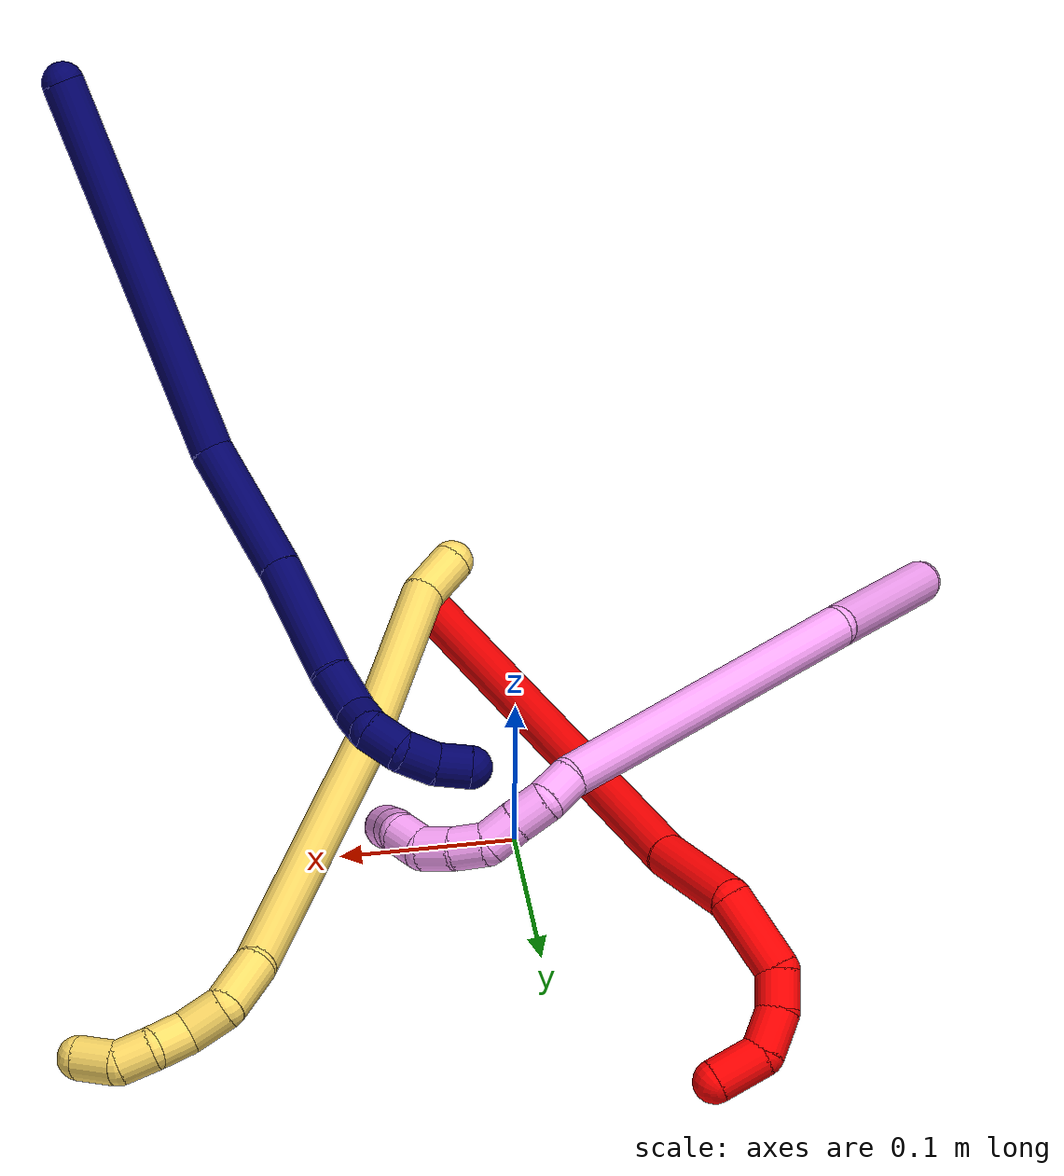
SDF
<sdf version="1.7">
 <world name="default">
  <model name="2">
   <static>0</static>
   <link name="2">
    <collision name="collision-cylinder-e_1_1_4">
     <pose>-0.007252 -0.004615 0.156243 0.029531 -0.046358 -0.000685</pose>
     <geometry><cylinder><radius>0.0125</radius><length>0.312959</length></cylinder></geometry>
     <surface>
      <friction><ode><mu>1.16</mu><mu2>1.16</mu2><slip1>0</slip1><slip2>0</slip2></ode></friction>
      <contact><ode><kp>1e+06</kp><kd>1</kd><max_vel>0</max_vel><min_depth>0.001</min_depth></ode></contact>
     </surface>
    </collision>
    <visual name="visual-cylinder-e_1_1_4">
     <pose>-0.007252 -0.004615 0.156243 0.029531 -0.046358 -0.000685</pose>
     <geometry><cylinder><radius>0.0125</radius><length>0.312959</length></cylinder></geometry>
     <material><ambient>1 0 0 1</ambient></material>
    </visual>
    <collision name="collision-cylinder-e_2_4_5">
     <pose>-0.019355 -0.012585 0.342227 0.112306 -0.160712 -0.009053</pose>
     <geometry><cylinder><radius>0.0125</radius><length>0.060639</length></cylinder></geometry>
     <surface>
      <friction><ode><mu>1.16</mu><mu2>1.16</mu2><slip1>0</slip1><slip2>0</slip2></ode></friction>
      <contact><ode><kp>1e+06</kp><kd>1</kd><max_vel>0</max_vel><min_depth>0.001</min_depth></ode></contact>
     </surface>
    </collision>
    <visual name="visual-cylinder-e_2_4_5">
     <pose>-0.019355 -0.012585 0.342227 0.112306 -0.160712 -0.009053</pose>
     <geometry><cylinder><radius>0.0125</radius><length>0.060639</length></cylinder></geometry>
     <material><ambient>1 0 0 1</ambient></material>
    </visual>
    <collision name="collision-cylinder-e_3_5_6">
     <pose>-0.034127 -0.004891 0.390769 -0.531255 -0.426937 0.117812</pose>
     <geometry><cylinder><radius>0.0125</radius><length>0.047917</length></cylinder></geometry>
     <surface>
      <friction><ode><mu>1.16</mu><mu2>1.16</mu2><slip1>0</slip1><slip2>0</slip2></ode></friction>
      <contact><ode><kp>1e+06</kp><kd>1</kd><max_vel>0</max_vel><min_depth>0.001</min_depth></ode></contact>
     </surface>
    </collision>
    <visual name="visual-cylinder-e_3_5_6">
     <pose>-0.034127 -0.004891 0.390769 -0.531255 -0.426937 0.117812</pose>
     <geometry><cylinder><radius>0.0125</radius><length>0.047917</length></cylinder></geometry>
     <material><ambient>1 0 0 1</ambient></material>
    </visual>
    <collision name="collision-cylinder-e_4_6_7">
     <pose>-0.043724 0.015041 0.416463 -0.910974 0.02881 -0.014113</pose>
     <geometry><cylinder><radius>0.0125</radius><length>0.022497</length></cylinder></geometry>
     <surface>
      <friction><ode><mu>1.16</mu><mu2>1.16</mu2><slip1>0</slip1><slip2>0</slip2></ode></friction>
      <contact><ode><kp>1e+06</kp><kd>1</kd><max_vel>0</max_vel><min_depth>0.001</min_depth></ode></contact>
     </surface>
    </collision>
    <visual name="visual-cylinder-e_4_6_7">
     <pose>-0.043724 0.015041 0.416463 -0.910974 0.02881 -0.014113</pose>
     <geometry><cylinder><radius>0.0125</radius><length>0.022497</length></cylinder></geometry>
     <material><ambient>1 0 0 1</ambient></material>
    </visual>
    <collision name="collision-cylinder-e_5_7_8">
     <pose>-0.038681 0.03413 0.429854 -1.00374 0.371907 -0.205734</pose>
     <geometry><cylinder><radius>0.0125</radius><length>0.025972</length></cylinder></geometry>
     <surface>
      <friction><ode><mu>1.16</mu><mu2>1.16</mu2><slip1>0</slip1><slip2>0</slip2></ode></friction>
      <contact><ode><kp>1e+06</kp><kd>1</kd><max_vel>0</max_vel><min_depth>0.001</min_depth></ode></contact>
     </surface>
    </collision>
    <visual name="visual-cylinder-e_5_7_8">
     <pose>-0.038681 0.03413 0.429854 -1.00374 0.371907 -0.205734</pose>
     <geometry><cylinder><radius>0.0125</radius><length>0.025972</length></cylinder></geometry>
     <material><ambient>1 0 0 1</ambient></material>
    </visual>
    <collision name="collision-cylinder-e_6_8_2">
     <pose>-0.021917 0.053284 0.436635 -1.53929 0.931532 -0.906481</pose>
     <geometry><cylinder><radius>0.0125</radius><length>0.030016</length></cylinder></geometry>
     <surface>
      <friction><ode><mu>1.16</mu><mu2>1.16</mu2><slip1>0</slip1><slip2>0</slip2></ode></friction>
      <contact><ode><kp>1e+06</kp><kd>1</kd><max_vel>0</max_vel><min_depth>0.001</min_depth></ode></contact>
     </surface>
    </collision>
    <visual name="visual-cylinder-e_6_8_2">
     <pose>-0.021917 0.053284 0.436635 -1.53929 0.931532 -0.906481</pose>
     <geometry><cylinder><radius>0.0125</radius><length>0.030016</length></cylinder></geometry>
     <material><ambient>1 0 0 1</ambient></material>
    </visual>
    <collision name="collision-sphere-2">
     <pose>-0.009873 0.062233 0.436917 0 -0 0</pose>
     <geometry><sphere><radius>0.0125</radius></sphere></geometry>
     <surface>
      <friction><ode><mu>1.16</mu><mu2>1.16</mu2><slip1>0</slip1><slip2>0</slip2></ode></friction>
      <contact><ode><kp>1e+06</kp><kd>1</kd><max_vel>0</max_vel><min_depth>0.001</min_depth></ode></contact>
     </surface>
    </collision>
    <visual name="visual-sphere-2">
     <pose>-0.009873 0.062233 0.436917 0 -0 0</pose>
     <geometry><sphere><radius>0.0125</radius></sphere></geometry>
     <material><ambient>1 0 0 1</ambient></material>
    </visual>
    <collision name="collision-sphere-4">
     <pose>-0.014503 -0.009231 0.312487 0 -0 0</pose>
     <geometry><sphere><radius>0.0125</radius></sphere></geometry>
     <surface>
      <friction><ode><mu>1.16</mu><mu2>1.16</mu2><slip1>0</slip1><slip2>0</slip2></ode></friction>
      <contact><ode><kp>1e+06</kp><kd>1</kd><max_vel>0</max_vel><min_depth>0.001</min_depth></ode></contact>
     </surface>
    </collision>
    <visual name="visual-sphere-4">
     <pose>-0.014503 -0.009231 0.312487 0 -0 0</pose>
     <geometry><sphere><radius>0.0125</radius></sphere></geometry>
     <material><ambient>1 0 0 1</ambient></material>
    </visual>
    <collision name="collision-sphere-1">
     <geometry><sphere><radius>0.0125</radius></sphere></geometry>
     <surface>
      <friction><ode><mu>1.16</mu><mu2>1.16</mu2><slip1>0</slip1><slip2>0</slip2></ode></friction>
      <contact><ode><kp>1e+06</kp><kd>1</kd><max_vel>0</max_vel><min_depth>0.001</min_depth></ode></contact>
     </surface>
    </collision>
    <visual name="visual-sphere-1">
     <geometry><sphere><radius>0.0125</radius></sphere></geometry>
     <material><ambient>1 0 0 1</ambient></material>
    </visual>
    <collision name="collision-sphere-8">
     <pose>-0.033962 0.044334 0.436353 0 -0 0</pose>
     <geometry><sphere><radius>0.0125</radius></sphere></geometry>
     <surface>
      <friction><ode><mu>1.16</mu><mu2>1.16</mu2><slip1>0</slip1><slip2>0</slip2></ode></friction>
      <contact><ode><kp>1e+06</kp><kd>1</kd><max_vel>0</max_vel><min_depth>0.001</min_depth></ode></contact>
     </surface>
    </collision>
    <visual name="visual-sphere-8">
     <pose>-0.033962 0.044334 0.436353 0 -0 0</pose>
     <geometry><sphere><radius>0.0125</radius></sphere></geometry>
     <material><ambient>1 0 0 1</ambient></material>
    </visual>
    <collision name="collision-sphere-5">
     <pose>-0.024207 -0.015939 0.371967 0 -0 0</pose>
     <geometry><sphere><radius>0.0125</radius></sphere></geometry>
     <surface>
      <friction><ode><mu>1.16</mu><mu2>1.16</mu2><slip1>0</slip1><slip2>0</slip2></ode></friction>
      <contact><ode><kp>1e+06</kp><kd>1</kd><max_vel>0</max_vel><min_depth>0.001</min_depth></ode></contact>
     </surface>
    </collision>
    <visual name="visual-sphere-5">
     <pose>-0.024207 -0.015939 0.371967 0 -0 0</pose>
     <geometry><sphere><radius>0.0125</radius></sphere></geometry>
     <material><ambient>1 0 0 1</ambient></material>
    </visual>
    <collision name="collision-sphere-6">
     <pose>-0.044048 0.006157 0.409571 0 -0 0</pose>
     <geometry><sphere><radius>0.0125</radius></sphere></geometry>
     <surface>
      <friction><ode><mu>1.16</mu><mu2>1.16</mu2><slip1>0</slip1><slip2>0</slip2></ode></friction>
      <contact><ode><kp>1e+06</kp><kd>1</kd><max_vel>0</max_vel><min_depth>0.001</min_depth></ode></contact>
     </surface>
    </collision>
    <visual name="visual-sphere-6">
     <pose>-0.044048 0.006157 0.409571 0 -0 0</pose>
     <geometry><sphere><radius>0.0125</radius></sphere></geometry>
     <material><ambient>1 0 0 1</ambient></material>
    </visual>
    <collision name="collision-sphere-7">
     <pose>-0.0434 0.023925 0.423356 0 -0 0</pose>
     <geometry><sphere><radius>0.0125</radius></sphere></geometry>
     <surface>
      <friction><ode><mu>1.16</mu><mu2>1.16</mu2><slip1>0</slip1><slip2>0</slip2></ode></friction>
      <contact><ode><kp>1e+06</kp><kd>1</kd><max_vel>0</max_vel><min_depth>0.001</min_depth></ode></contact>
     </surface>
    </collision>
    <visual name="visual-sphere-7">
     <pose>-0.0434 0.023925 0.423356 0 -0 0</pose>
     <geometry><sphere><radius>0.0125</radius></sphere></geometry>
     <material><ambient>1 0 0 1</ambient></material>
    </visual>
    <inertial>
     <pose>-0.015449 0.000765 0.244028 0 -0 0</pose>
     <mass>0.5</mass>
     <inertia>
      <ixx>0.002596</ixx>
      <ixy>0</ixy>
      <ixz>0</ixz>
      <iyy>0.002603</iyy>
      <iyz>0</iyz>
      <izz>0.000225</izz>
     </inertia>
    </inertial>
   </link>
   <pose>0.022462 -0.199701 0.011494 -1.40688 -0.360816 0.196092</pose>
  </model>
  <model name="4">
   <static>0</static>
   <link name="4">
    <collision name="collision-cylinder-e_1_1_4">
     <pose>0.009525 0.020167 -0.061052 -2.82256 0.147066 -0.85877</pose>
     <geometry><cylinder><radius>0.0125</radius><length>0.129997</length></cylinder></geometry>
     <surface>
      <friction><ode><mu>1.16</mu><mu2>1.16</mu2><slip1>0</slip1><slip2>0</slip2></ode></friction>
      <contact><ode><kp>1e+06</kp><kd>1</kd><max_vel>0</max_vel><min_depth>0.001</min_depth></ode></contact>
     </surface>
    </collision>
    <visual name="visual-cylinder-e_1_1_4">
     <pose>0.009525 0.020167 -0.061052 -2.82256 0.147066 -0.85877</pose>
     <geometry><cylinder><radius>0.0125</radius><length>0.129997</length></cylinder></geometry>
     <material><ambient>1 0.65098 0.996078 1</ambient></material>
    </visual>
    <collision name="collision-cylinder-e_2_4_5">
     <pose>0.043114 0.019352 -0.221646 2.93385 0.232285 1.68312</pose>
     <geometry><cylinder><radius>0.0125</radius><length>0.209072</length></cylinder></geometry>
     <surface>
      <friction><ode><mu>1.16</mu><mu2>1.16</mu2><slip1>0</slip1><slip2>0</slip2></ode></friction>
      <contact><ode><kp>1e+06</kp><kd>1</kd><max_vel>0</max_vel><min_depth>0.001</min_depth></ode></contact>
     </surface>
    </collision>
    <visual name="visual-cylinder-e_2_4_5">
     <pose>0.043114 0.019352 -0.221646 2.93385 0.232285 1.68312</pose>
     <geometry><cylinder><radius>0.0125</radius><length>0.209072</length></cylinder></geometry>
     <material><ambient>1 0.65098 0.996078 1</ambient></material>
    </visual>
    <collision name="collision-cylinder-e_3_5_6">
     <pose>0.067289 -0.005288 -0.330681 2.77383 0.010939 0.058798</pose>
     <geometry><cylinder><radius>0.0125</radius><length>0.02035</length></cylinder></geometry>
     <surface>
      <friction><ode><mu>1.16</mu><mu2>1.16</mu2><slip1>0</slip1><slip2>0</slip2></ode></friction>
      <contact><ode><kp>1e+06</kp><kd>1</kd><max_vel>0</max_vel><min_depth>0.001</min_depth></ode></contact>
     </surface>
    </collision>
    <visual name="visual-cylinder-e_3_5_6">
     <pose>0.067289 -0.005288 -0.330681 2.77383 0.010939 0.058798</pose>
     <geometry><cylinder><radius>0.0125</radius><length>0.02035</length></cylinder></geometry>
     <material><ambient>1 0.65098 0.996078 1</ambient></material>
    </visual>
    <collision name="collision-cylinder-e_4_6_7">
     <pose>0.069005 -0.016779 -0.346638 2.26064 0.156714 0.330121</pose>
     <geometry><cylinder><radius>0.0125</radius><length>0.020561</length></cylinder></geometry>
     <surface>
      <friction><ode><mu>1.16</mu><mu2>1.16</mu2><slip1>0</slip1><slip2>0</slip2></ode></friction>
      <contact><ode><kp>1e+06</kp><kd>1</kd><max_vel>0</max_vel><min_depth>0.001</min_depth></ode></contact>
     </surface>
    </collision>
    <visual name="visual-cylinder-e_4_6_7">
     <pose>0.069005 -0.016779 -0.346638 2.26064 0.156714 0.330121</pose>
     <geometry><cylinder><radius>0.0125</radius><length>0.020561</length></cylinder></geometry>
     <material><ambient>1 0.65098 0.996078 1</ambient></material>
    </visual>
    <collision name="collision-cylinder-e_5_7_8">
     <pose>0.071651 -0.03213 -0.359625 2.28556 0.10425 0.227724</pose>
     <geometry><cylinder><radius>0.0125</radius><length>0.02002</length></cylinder></geometry>
     <surface>
      <friction><ode><mu>1.16</mu><mu2>1.16</mu2><slip1>0</slip1><slip2>0</slip2></ode></friction>
      <contact><ode><kp>1e+06</kp><kd>1</kd><max_vel>0</max_vel><min_depth>0.001</min_depth></ode></contact>
     </surface>
    </collision>
    <visual name="visual-cylinder-e_5_7_8">
     <pose>0.071651 -0.03213 -0.359625 2.28556 0.10425 0.227724</pose>
     <geometry><cylinder><radius>0.0125</radius><length>0.02002</length></cylinder></geometry>
     <material><ambient>1 0.65098 0.996078 1</ambient></material>
    </visual>
    <collision name="collision-cylinder-e_6_8_9">
     <pose>0.078229 -0.047421 -0.369143 1.93835 0.586639 0.828921</pose>
     <geometry><cylinder><radius>0.0125</radius><length>0.02</length></cylinder></geometry>
     <surface>
      <friction><ode><mu>1.16</mu><mu2>1.16</mu2><slip1>0</slip1><slip2>0</slip2></ode></friction>
      <contact><ode><kp>1e+06</kp><kd>1</kd><max_vel>0</max_vel><min_depth>0.001</min_depth></ode></contact>
     </surface>
    </collision>
    <visual name="visual-cylinder-e_6_8_9">
     <pose>0.078229 -0.047421 -0.369143 1.93835 0.586639 0.828921</pose>
     <geometry><cylinder><radius>0.0125</radius><length>0.02</length></cylinder></geometry>
     <material><ambient>1 0.65098 0.996078 1</ambient></material>
    </visual>
    <collision name="collision-cylinder-e_7_9_10">
     <pose>0.089919 -0.062953 -0.373513 1.74643 0.662939 0.779262</pose>
     <geometry><cylinder><radius>0.0125</radius><length>0.02</length></cylinder></geometry>
     <surface>
      <friction><ode><mu>1.16</mu><mu2>1.16</mu2><slip1>0</slip1><slip2>0</slip2></ode></friction>
      <contact><ode><kp>1e+06</kp><kd>1</kd><max_vel>0</max_vel><min_depth>0.001</min_depth></ode></contact>
     </surface>
    </collision>
    <visual name="visual-cylinder-e_7_9_10">
     <pose>0.089919 -0.062953 -0.373513 1.74643 0.662939 0.779262</pose>
     <geometry><cylinder><radius>0.0125</radius><length>0.02</length></cylinder></geometry>
     <material><ambient>1 0.65098 0.996078 1</ambient></material>
    </visual>
    <collision name="collision-cylinder-e_8_10_11">
     <pose>0.103141 -0.076712 -0.371138 1.01184 0.784898 0.450839</pose>
     <geometry><cylinder><radius>0.0125</radius><length>0.02</length></cylinder></geometry>
     <surface>
      <friction><ode><mu>1.16</mu><mu2>1.16</mu2><slip1>0</slip1><slip2>0</slip2></ode></friction>
      <contact><ode><kp>1e+06</kp><kd>1</kd><max_vel>0</max_vel><min_depth>0.001</min_depth></ode></contact>
     </surface>
    </collision>
    <visual name="visual-cylinder-e_8_10_11">
     <pose>0.103141 -0.076712 -0.371138 1.01184 0.784898 0.450839</pose>
     <geometry><cylinder><radius>0.0125</radius><length>0.02</length></cylinder></geometry>
     <material><ambient>1 0.65098 0.996078 1</ambient></material>
    </visual>
    <collision name="collision-cylinder-e_9_11_12">
     <pose>0.112099 -0.089999 -0.360807 0.83656 0.190206 0.084754</pose>
     <geometry><cylinder><radius>0.0125</radius><length>0.02</length></cylinder></geometry>
     <surface>
      <friction><ode><mu>1.16</mu><mu2>1.16</mu2><slip1>0</slip1><slip2>0</slip2></ode></friction>
      <contact><ode><kp>1e+06</kp><kd>1</kd><max_vel>0</max_vel><min_depth>0.001</min_depth></ode></contact>
     </surface>
    </collision>
    <visual name="visual-cylinder-e_9_11_12">
     <pose>0.112099 -0.089999 -0.360807 0.83656 0.190206 0.084754</pose>
     <geometry><cylinder><radius>0.0125</radius><length>0.02</length></cylinder></geometry>
     <material><ambient>1 0.65098 0.996078 1</ambient></material>
    </visual>
    <collision name="collision-cylinder-e_10_12_2">
     <pose>0.116202 -0.105046 -0.348317 0.919658 0.223147 0.110858</pose>
     <geometry><cylinder><radius>0.0125</radius><length>0.02</length></cylinder></geometry>
     <surface>
      <friction><ode><mu>1.16</mu><mu2>1.16</mu2><slip1>0</slip1><slip2>0</slip2></ode></friction>
      <contact><ode><kp>1e+06</kp><kd>1</kd><max_vel>0</max_vel><min_depth>0.001</min_depth></ode></contact>
     </surface>
    </collision>
    <visual name="visual-cylinder-e_10_12_2">
     <pose>0.116202 -0.105046 -0.348317 0.919658 0.223147 0.110858</pose>
     <geometry><cylinder><radius>0.0125</radius><length>0.02</length></cylinder></geometry>
     <material><ambient>1 0.65098 0.996078 1</ambient></material>
    </visual>
    <collision name="collision-sphere-2">
     <pose>0.118415 -0.112802 -0.342407 0 -0 0</pose>
     <geometry><sphere><radius>0.0125</radius></sphere></geometry>
     <surface>
      <friction><ode><mu>1.16</mu><mu2>1.16</mu2><slip1>0</slip1><slip2>0</slip2></ode></friction>
      <contact><ode><kp>1e+06</kp><kd>1</kd><max_vel>0</max_vel><min_depth>0.001</min_depth></ode></contact>
     </surface>
    </collision>
    <visual name="visual-sphere-2">
     <pose>0.118415 -0.112802 -0.342407 0 -0 0</pose>
     <geometry><sphere><radius>0.0125</radius></sphere></geometry>
     <material><ambient>1 0.65098 0.996078 1</ambient></material>
    </visual>
    <collision name="collision-sphere-12">
     <pose>0.113989 -0.097289 -0.354228 0 -0 0</pose>
     <geometry><sphere><radius>0.0125</radius></sphere></geometry>
     <surface>
      <friction><ode><mu>1.16</mu><mu2>1.16</mu2><slip1>0</slip1><slip2>0</slip2></ode></friction>
      <contact><ode><kp>1e+06</kp><kd>1</kd><max_vel>0</max_vel><min_depth>0.001</min_depth></ode></contact>
     </surface>
    </collision>
    <visual name="visual-sphere-12">
     <pose>0.113989 -0.097289 -0.354228 0 -0 0</pose>
     <geometry><sphere><radius>0.0125</radius></sphere></geometry>
     <material><ambient>1 0.65098 0.996078 1</ambient></material>
    </visual>
    <collision name="collision-sphere-11">
     <pose>0.110208 -0.08271 -0.367387 0 -0 0</pose>
     <geometry><sphere><radius>0.0125</radius></sphere></geometry>
     <surface>
      <friction><ode><mu>1.16</mu><mu2>1.16</mu2><slip1>0</slip1><slip2>0</slip2></ode></friction>
      <contact><ode><kp>1e+06</kp><kd>1</kd><max_vel>0</max_vel><min_depth>0.001</min_depth></ode></contact>
     </surface>
    </collision>
    <visual name="visual-sphere-11">
     <pose>0.110208 -0.08271 -0.367387 0 -0 0</pose>
     <geometry><sphere><radius>0.0125</radius></sphere></geometry>
     <material><ambient>1 0.65098 0.996078 1</ambient></material>
    </visual>
    <collision name="collision-sphere-10">
     <pose>0.096073 -0.070714 -0.37489 0 -0 0</pose>
     <geometry><sphere><radius>0.0125</radius></sphere></geometry>
     <surface>
      <friction><ode><mu>1.16</mu><mu2>1.16</mu2><slip1>0</slip1><slip2>0</slip2></ode></friction>
      <contact><ode><kp>1e+06</kp><kd>1</kd><max_vel>0</max_vel><min_depth>0.001</min_depth></ode></contact>
     </surface>
    </collision>
    <visual name="visual-sphere-10">
     <pose>0.096073 -0.070714 -0.37489 0 -0 0</pose>
     <geometry><sphere><radius>0.0125</radius></sphere></geometry>
     <material><ambient>1 0.65098 0.996078 1</ambient></material>
    </visual>
    <collision name="collision-sphere-9">
     <pose>0.083764 -0.055193 -0.372136 0 -0 0</pose>
     <geometry><sphere><radius>0.0125</radius></sphere></geometry>
     <surface>
      <friction><ode><mu>1.16</mu><mu2>1.16</mu2><slip1>0</slip1><slip2>0</slip2></ode></friction>
      <contact><ode><kp>1e+06</kp><kd>1</kd><max_vel>0</max_vel><min_depth>0.001</min_depth></ode></contact>
     </surface>
    </collision>
    <visual name="visual-sphere-9">
     <pose>0.083764 -0.055193 -0.372136 0 -0 0</pose>
     <geometry><sphere><radius>0.0125</radius></sphere></geometry>
     <material><ambient>1 0.65098 0.996078 1</ambient></material>
    </visual>
    <collision name="collision-sphere-4">
     <pose>0.019049 0.040334 -0.122105 0 -0 0</pose>
     <geometry><sphere><radius>0.0125</radius></sphere></geometry>
     <surface>
      <friction><ode><mu>1.16</mu><mu2>1.16</mu2><slip1>0</slip1><slip2>0</slip2></ode></friction>
      <contact><ode><kp>1e+06</kp><kd>1</kd><max_vel>0</max_vel><min_depth>0.001</min_depth></ode></contact>
     </surface>
    </collision>
    <visual name="visual-sphere-4">
     <pose>0.019049 0.040334 -0.122105 0 -0 0</pose>
     <geometry><sphere><radius>0.0125</radius></sphere></geometry>
     <material><ambient>1 0.65098 0.996078 1</ambient></material>
    </visual>
    <collision name="collision-sphere-1">
     <geometry><sphere><radius>0.0125</radius></sphere></geometry>
     <surface>
      <friction><ode><mu>1.16</mu><mu2>1.16</mu2><slip1>0</slip1><slip2>0</slip2></ode></friction>
      <contact><ode><kp>1e+06</kp><kd>1</kd><max_vel>0</max_vel><min_depth>0.001</min_depth></ode></contact>
     </surface>
    </collision>
    <visual name="visual-sphere-1">
     <geometry><sphere><radius>0.0125</radius></sphere></geometry>
     <material><ambient>1 0.65098 0.996078 1</ambient></material>
    </visual>
    <collision name="collision-sphere-8">
     <pose>0.072693 -0.039649 -0.366151 0 -0 0</pose>
     <geometry><sphere><radius>0.0125</radius></sphere></geometry>
     <surface>
      <friction><ode><mu>1.16</mu><mu2>1.16</mu2><slip1>0</slip1><slip2>0</slip2></ode></friction>
      <contact><ode><kp>1e+06</kp><kd>1</kd><max_vel>0</max_vel><min_depth>0.001</min_depth></ode></contact>
     </surface>
    </collision>
    <visual name="visual-sphere-8">
     <pose>0.072693 -0.039649 -0.366151 0 -0 0</pose>
     <geometry><sphere><radius>0.0125</radius></sphere></geometry>
     <material><ambient>1 0.65098 0.996078 1</ambient></material>
    </visual>
    <collision name="collision-sphere-5">
     <pose>0.067178 -0.00163 -0.321187 0 -0 0</pose>
     <geometry><sphere><radius>0.0125</radius></sphere></geometry>
     <surface>
      <friction><ode><mu>1.16</mu><mu2>1.16</mu2><slip1>0</slip1><slip2>0</slip2></ode></friction>
      <contact><ode><kp>1e+06</kp><kd>1</kd><max_vel>0</max_vel><min_depth>0.001</min_depth></ode></contact>
     </surface>
    </collision>
    <visual name="visual-sphere-5">
     <pose>0.067178 -0.00163 -0.321187 0 -0 0</pose>
     <geometry><sphere><radius>0.0125</radius></sphere></geometry>
     <material><ambient>1 0.65098 0.996078 1</ambient></material>
    </visual>
    <collision name="collision-sphere-6">
     <pose>0.067401 -0.008946 -0.340175 0 -0 0</pose>
     <geometry><sphere><radius>0.0125</radius></sphere></geometry>
     <surface>
      <friction><ode><mu>1.16</mu><mu2>1.16</mu2><slip1>0</slip1><slip2>0</slip2></ode></friction>
      <contact><ode><kp>1e+06</kp><kd>1</kd><max_vel>0</max_vel><min_depth>0.001</min_depth></ode></contact>
     </surface>
    </collision>
    <visual name="visual-sphere-6">
     <pose>0.067401 -0.008946 -0.340175 0 -0 0</pose>
     <geometry><sphere><radius>0.0125</radius></sphere></geometry>
     <material><ambient>1 0.65098 0.996078 1</ambient></material>
    </visual>
    <collision name="collision-sphere-7">
     <pose>0.07061 -0.024611 -0.3531 0 -0 0</pose>
     <geometry><sphere><radius>0.0125</radius></sphere></geometry>
     <surface>
      <friction><ode><mu>1.16</mu><mu2>1.16</mu2><slip1>0</slip1><slip2>0</slip2></ode></friction>
      <contact><ode><kp>1e+06</kp><kd>1</kd><max_vel>0</max_vel><min_depth>0.001</min_depth></ode></contact>
     </surface>
    </collision>
    <visual name="visual-sphere-7">
     <pose>0.07061 -0.024611 -0.3531 0 -0 0</pose>
     <geometry><sphere><radius>0.0125</radius></sphere></geometry>
     <material><ambient>1 0.65098 0.996078 1</ambient></material>
    </visual>
    <inertial>
     <pose>0.048933 -0.004142 -0.223582 0 -0 0</pose>
     <mass>0.5</mass>
     <inertia>
      <ixx>0.000663</ixx>
      <ixy>0</ixy>
      <ixz>0</ixz>
      <iyy>0.000609</iyy>
      <iyz>0</iyz>
      <izz>-0.000131</izz>
     </inertia>
    </inertial>
   </link>
   <pose>-0.266964 -0.176886 0.011912 1.67491 -0.580191 -0.727052</pose>
  </model>
  <model name="5">
   <static>0</static>
   <link name="5">
    <collision name="collision-cylinder-e_1_1_4">
     <pose>0.000305 0.014765 0.00164 -1.4602 0.020551 -0.018395</pose>
     <geometry><cylinder><radius>0.0125</radius><length>0.029718</length></cylinder></geometry>
     <surface>
      <friction><ode><mu>1.16</mu><mu2>1.16</mu2><slip1>0</slip1><slip2>0</slip2></ode></friction>
      <contact><ode><kp>1e+06</kp><kd>1</kd><max_vel>0</max_vel><min_depth>0.001</min_depth></ode></contact>
     </surface>
    </collision>
    <visual name="visual-cylinder-e_1_1_4">
     <pose>0.000305 0.014765 0.00164 -1.4602 0.020551 -0.018395</pose>
     <geometry><cylinder><radius>0.0125</radius><length>0.029718</length></cylinder></geometry>
     <material><ambient>1 0.858824 0.4 1</ambient></material>
    </visual>
    <collision name="collision-cylinder-e_2_4_5">
     <pose>0.027735 0.089232 0.004977 -1.54237 0.426296 -0.414692</pose>
     <geometry><cylinder><radius>0.0125</radius><length>0.131193</length></cylinder></geometry>
     <surface>
      <friction><ode><mu>1.16</mu><mu2>1.16</mu2><slip1>0</slip1><slip2>0</slip2></ode></friction>
      <contact><ode><kp>1e+06</kp><kd>1</kd><max_vel>0</max_vel><min_depth>0.001</min_depth></ode></contact>
     </surface>
    </collision>
    <visual name="visual-cylinder-e_2_4_5">
     <pose>0.027735 0.089232 0.004977 -1.54237 0.426296 -0.414692</pose>
     <geometry><cylinder><radius>0.0125</radius><length>0.131193</length></cylinder></geometry>
     <material><ambient>1 0.858824 0.4 1</ambient></material>
    </visual>
    <collision name="collision-cylinder-e_3_5_6">
     <pose>0.097737 0.245897 -0.003712 -1.67751 0.414246 -0.459442</pose>
     <geometry><cylinder><radius>0.0125</radius><length>0.213057</length></cylinder></geometry>
     <surface>
      <friction><ode><mu>1.16</mu><mu2>1.16</mu2><slip1>0</slip1><slip2>0</slip2></ode></friction>
      <contact><ode><kp>1e+06</kp><kd>1</kd><max_vel>0</max_vel><min_depth>0.001</min_depth></ode></contact>
     </surface>
    </collision>
    <visual name="visual-cylinder-e_3_5_6">
     <pose>0.097737 0.245897 -0.003712 -1.67751 0.414246 -0.459442</pose>
     <geometry><cylinder><radius>0.0125</radius><length>0.213057</length></cylinder></geometry>
     <material><ambient>1 0.858824 0.4 1</ambient></material>
    </visual>
    <collision name="collision-cylinder-e_4_6_7">
     <pose>0.1436 0.359808 -0.013266 -1.52165 0.174167 -0.16585</pose>
     <geometry><cylinder><radius>0.0125</radius><length>0.034458</length></cylinder></geometry>
     <surface>
      <friction><ode><mu>1.16</mu><mu2>1.16</mu2><slip1>0</slip1><slip2>0</slip2></ode></friction>
      <contact><ode><kp>1e+06</kp><kd>1</kd><max_vel>0</max_vel><min_depth>0.001</min_depth></ode></contact>
     </surface>
    </collision>
    <visual name="visual-cylinder-e_4_6_7">
     <pose>0.1436 0.359808 -0.013266 -1.52165 0.174167 -0.16585</pose>
     <geometry><cylinder><radius>0.0125</radius><length>0.034458</length></cylinder></geometry>
     <material><ambient>1 0.858824 0.4 1</ambient></material>
    </visual>
    <collision name="collision-cylinder-e_5_7_8">
     <pose>0.140218 0.38679 -0.008544 -1.20114 -0.534274 0.370623</pose>
     <geometry><cylinder><radius>0.0125</radius><length>0.025007</length></cylinder></geometry>
     <surface>
      <friction><ode><mu>1.16</mu><mu2>1.16</mu2><slip1>0</slip1><slip2>0</slip2></ode></friction>
      <contact><ode><kp>1e+06</kp><kd>1</kd><max_vel>0</max_vel><min_depth>0.001</min_depth></ode></contact>
     </surface>
    </collision>
    <visual name="visual-cylinder-e_5_7_8">
     <pose>0.140218 0.38679 -0.008544 -1.20114 -0.534274 0.370623</pose>
     <geometry><cylinder><radius>0.0125</radius><length>0.025007</length></cylinder></geometry>
     <material><ambient>1 0.858824 0.4 1</ambient></material>
    </visual>
    <collision name="collision-cylinder-e_6_8_9">
     <pose>0.130747 0.407078 -0.005741 -1.67615 -0.292411 0.324423</pose>
     <geometry><cylinder><radius>0.0125</radius><length>0.021537</length></cylinder></geometry>
     <surface>
      <friction><ode><mu>1.16</mu><mu2>1.16</mu2><slip1>0</slip1><slip2>0</slip2></ode></friction>
      <contact><ode><kp>1e+06</kp><kd>1</kd><max_vel>0</max_vel><min_depth>0.001</min_depth></ode></contact>
     </surface>
    </collision>
    <visual name="visual-cylinder-e_6_8_9">
     <pose>0.130747 0.407078 -0.005741 -1.67615 -0.292411 0.324423</pose>
     <geometry><cylinder><radius>0.0125</radius><length>0.021537</length></cylinder></geometry>
     <material><ambient>1 0.858824 0.4 1</ambient></material>
    </visual>
    <collision name="collision-cylinder-e_7_9_10">
     <pose>0.121261 0.42532 -0.005122 -1.36077 -0.663358 0.543651</pose>
     <geometry><cylinder><radius>0.0125</radius><length>0.02073</length></cylinder></geometry>
     <surface>
      <friction><ode><mu>1.16</mu><mu2>1.16</mu2><slip1>0</slip1><slip2>0</slip2></ode></friction>
      <contact><ode><kp>1e+06</kp><kd>1</kd><max_vel>0</max_vel><min_depth>0.001</min_depth></ode></contact>
     </surface>
    </collision>
    <visual name="visual-cylinder-e_7_9_10">
     <pose>0.121261 0.42532 -0.005122 -1.36077 -0.663358 0.543651</pose>
     <geometry><cylinder><radius>0.0125</radius><length>0.02073</length></cylinder></geometry>
     <material><ambient>1 0.858824 0.4 1</ambient></material>
    </visual>
    <collision name="collision-cylinder-e_8_10_2">
     <pose>0.103135 0.436391 -0.002948 -1.419 -1.31115 1.16722</pose>
     <geometry><cylinder><radius>0.0125</radius><length>0.024301</length></cylinder></geometry>
     <surface>
      <friction><ode><mu>1.16</mu><mu2>1.16</mu2><slip1>0</slip1><slip2>0</slip2></ode></friction>
      <contact><ode><kp>1e+06</kp><kd>1</kd><max_vel>0</max_vel><min_depth>0.001</min_depth></ode></contact>
     </surface>
    </collision>
    <visual name="visual-cylinder-e_8_10_2">
     <pose>0.103135 0.436391 -0.002948 -1.419 -1.31115 1.16722</pose>
     <geometry><cylinder><radius>0.0125</radius><length>0.024301</length></cylinder></geometry>
     <material><ambient>1 0.858824 0.4 1</ambient></material>
    </visual>
    <collision name="collision-sphere-2">
     <pose>0.091392 0.439475 -0.002476 0 -0 0</pose>
     <geometry><sphere><radius>0.0125</radius></sphere></geometry>
     <surface>
      <friction><ode><mu>1.16</mu><mu2>1.16</mu2><slip1>0</slip1><slip2>0</slip2></ode></friction>
      <contact><ode><kp>1e+06</kp><kd>1</kd><max_vel>0</max_vel><min_depth>0.001</min_depth></ode></contact>
     </surface>
    </collision>
    <visual name="visual-sphere-2">
     <pose>0.091392 0.439475 -0.002476 0 -0 0</pose>
     <geometry><sphere><radius>0.0125</radius></sphere></geometry>
     <material><ambient>1 0.858824 0.4 1</ambient></material>
    </visual>
    <collision name="collision-sphere-10">
     <pose>0.114878 0.433307 -0.00342 0 -0 0</pose>
     <geometry><sphere><radius>0.0125</radius></sphere></geometry>
     <surface>
      <friction><ode><mu>1.16</mu><mu2>1.16</mu2><slip1>0</slip1><slip2>0</slip2></ode></friction>
      <contact><ode><kp>1e+06</kp><kd>1</kd><max_vel>0</max_vel><min_depth>0.001</min_depth></ode></contact>
     </surface>
    </collision>
    <visual name="visual-sphere-10">
     <pose>0.114878 0.433307 -0.00342 0 -0 0</pose>
     <geometry><sphere><radius>0.0125</radius></sphere></geometry>
     <material><ambient>1 0.858824 0.4 1</ambient></material>
    </visual>
    <collision name="collision-sphere-9">
     <pose>0.127643 0.417332 -0.006825 0 -0 0</pose>
     <geometry><sphere><radius>0.0125</radius></sphere></geometry>
     <surface>
      <friction><ode><mu>1.16</mu><mu2>1.16</mu2><slip1>0</slip1><slip2>0</slip2></ode></friction>
      <contact><ode><kp>1e+06</kp><kd>1</kd><max_vel>0</max_vel><min_depth>0.001</min_depth></ode></contact>
     </surface>
    </collision>
    <visual name="visual-sphere-9">
     <pose>0.127643 0.417332 -0.006825 0 -0 0</pose>
     <geometry><sphere><radius>0.0125</radius></sphere></geometry>
     <material><ambient>1 0.858824 0.4 1</ambient></material>
    </visual>
    <collision name="collision-sphere-4">
     <pose>0.000611 0.02953 0.003279 0 -0 0</pose>
     <geometry><sphere><radius>0.0125</radius></sphere></geometry>
     <surface>
      <friction><ode><mu>1.16</mu><mu2>1.16</mu2><slip1>0</slip1><slip2>0</slip2></ode></friction>
      <contact><ode><kp>1e+06</kp><kd>1</kd><max_vel>0</max_vel><min_depth>0.001</min_depth></ode></contact>
     </surface>
    </collision>
    <visual name="visual-sphere-4">
     <pose>0.000611 0.02953 0.003279 0 -0 0</pose>
     <geometry><sphere><radius>0.0125</radius></sphere></geometry>
     <material><ambient>1 0.858824 0.4 1</ambient></material>
    </visual>
    <collision name="collision-sphere-1">
     <geometry><sphere><radius>0.0125</radius></sphere></geometry>
     <surface>
      <friction><ode><mu>1.16</mu><mu2>1.16</mu2><slip1>0</slip1><slip2>0</slip2></ode></friction>
      <contact><ode><kp>1e+06</kp><kd>1</kd><max_vel>0</max_vel><min_depth>0.001</min_depth></ode></contact>
     </surface>
    </collision>
    <visual name="visual-sphere-1">
     <geometry><sphere><radius>0.0125</radius></sphere></geometry>
     <material><ambient>1 0.858824 0.4 1</ambient></material>
    </visual>
    <collision name="collision-sphere-8">
     <pose>0.133851 0.396824 -0.004656 0 -0 0</pose>
     <geometry><sphere><radius>0.0125</radius></sphere></geometry>
     <surface>
      <friction><ode><mu>1.16</mu><mu2>1.16</mu2><slip1>0</slip1><slip2>0</slip2></ode></friction>
      <contact><ode><kp>1e+06</kp><kd>1</kd><max_vel>0</max_vel><min_depth>0.001</min_depth></ode></contact>
     </surface>
    </collision>
    <visual name="visual-sphere-8">
     <pose>0.133851 0.396824 -0.004656 0 -0 0</pose>
     <geometry><sphere><radius>0.0125</radius></sphere></geometry>
     <material><ambient>1 0.858824 0.4 1</ambient></material>
    </visual>
    <collision name="collision-sphere-5">
     <pose>0.054859 0.148933 0.006674 0 -0 0</pose>
     <geometry><sphere><radius>0.0125</radius></sphere></geometry>
     <surface>
      <friction><ode><mu>1.16</mu><mu2>1.16</mu2><slip1>0</slip1><slip2>0</slip2></ode></friction>
      <contact><ode><kp>1e+06</kp><kd>1</kd><max_vel>0</max_vel><min_depth>0.001</min_depth></ode></contact>
     </surface>
    </collision>
    <visual name="visual-sphere-5">
     <pose>0.054859 0.148933 0.006674 0 -0 0</pose>
     <geometry><sphere><radius>0.0125</radius></sphere></geometry>
     <material><ambient>1 0.858824 0.4 1</ambient></material>
    </visual>
    <collision name="collision-sphere-6">
     <pose>0.140614 0.34286 -0.014099 0 -0 0</pose>
     <geometry><sphere><radius>0.0125</radius></sphere></geometry>
     <surface>
      <friction><ode><mu>1.16</mu><mu2>1.16</mu2><slip1>0</slip1><slip2>0</slip2></ode></friction>
      <contact><ode><kp>1e+06</kp><kd>1</kd><max_vel>0</max_vel><min_depth>0.001</min_depth></ode></contact>
     </surface>
    </collision>
    <visual name="visual-sphere-6">
     <pose>0.140614 0.34286 -0.014099 0 -0 0</pose>
     <geometry><sphere><radius>0.0125</radius></sphere></geometry>
     <material><ambient>1 0.858824 0.4 1</ambient></material>
    </visual>
    <collision name="collision-sphere-7">
     <pose>0.146585 0.376756 -0.012432 0 -0 0</pose>
     <geometry><sphere><radius>0.0125</radius></sphere></geometry>
     <surface>
      <friction><ode><mu>1.16</mu><mu2>1.16</mu2><slip1>0</slip1><slip2>0</slip2></ode></friction>
      <contact><ode><kp>1e+06</kp><kd>1</kd><max_vel>0</max_vel><min_depth>0.001</min_depth></ode></contact>
     </surface>
    </collision>
    <visual name="visual-sphere-7">
     <pose>0.146585 0.376756 -0.012432 0 -0 0</pose>
     <geometry><sphere><radius>0.0125</radius></sphere></geometry>
     <material><ambient>1 0.858824 0.4 1</ambient></material>
    </visual>
    <inertial>
     <pose>0.081523 0.229589 -0.002123 0 -0 0</pose>
     <mass>0.5</mass>
     <inertia>
      <ixx>0.000449</ixx>
      <ixy>0</ixy>
      <ixz>0</ixz>
      <iyy>-0.000257</iyy>
      <iyz>0</iyz>
      <izz>-0.001334</izz>
     </inertia>
    </inertial>
   </link>
   <pose>0.007642 -0.198755 0.043004 -3.05867 -0.157096 2.31417</pose>
  </model>
  <model name="7">
   <static>0</static>
   <link name="7">
    <collision name="collision-cylinder-e_1_1_4">
     <pose>-0.008222 0.04633 -0.10476 -2.7252 -0.071657 0.33614</pose>
     <geometry><cylinder><radius>0.0125</radius><length>0.229685</length></cylinder></geometry>
     <surface>
      <friction><ode><mu>1.16</mu><mu2>1.16</mu2><slip1>0</slip1><slip2>0</slip2></ode></friction>
      <contact><ode><kp>1e+06</kp><kd>1</kd><max_vel>0</max_vel><min_depth>0.001</min_depth></ode></contact>
     </surface>
    </collision>
    <visual name="visual-cylinder-e_1_1_4">
     <pose>-0.008222 0.04633 -0.10476 -2.7252 -0.071657 0.33614</pose>
     <geometry><cylinder><radius>0.0125</radius><length>0.229685</length></cylinder></geometry>
     <material><ambient>0.003922 0 0.403922 1</ambient></material>
    </visual>
    <collision name="collision-cylinder-e_2_4_5">
     <pose>-0.03235 0.119849 -0.23866 -2.39079 -0.379735 0.907453</pose>
     <geometry><cylinder><radius>0.0125</radius><length>0.085823</length></cylinder></geometry>
     <surface>
      <friction><ode><mu>1.16</mu><mu2>1.16</mu2><slip1>0</slip1><slip2>0</slip2></ode></friction>
      <contact><ode><kp>1e+06</kp><kd>1</kd><max_vel>0</max_vel><min_depth>0.001</min_depth></ode></contact>
     </surface>
    </collision>
    <visual name="visual-cylinder-e_2_4_5">
     <pose>-0.03235 0.119849 -0.23866 -2.39079 -0.379735 0.907453</pose>
     <geometry><cylinder><radius>0.0125</radius><length>0.085823</length></cylinder></geometry>
     <material><ambient>0.003922 0 0.403922 1</ambient></material>
    </visual>
    <collision name="collision-cylinder-e_3_5_6">
     <pose>-0.059807 0.17117 -0.292042 -2.35854 -0.325662 0.757454</pose>
     <geometry><cylinder><radius>0.0125</radius><length>0.072207</length></cylinder></geometry>
     <surface>
      <friction><ode><mu>1.16</mu><mu2>1.16</mu2><slip1>0</slip1><slip2>0</slip2></ode></friction>
      <contact><ode><kp>1e+06</kp><kd>1</kd><max_vel>0</max_vel><min_depth>0.001</min_depth></ode></contact>
     </surface>
    </collision>
    <visual name="visual-cylinder-e_3_5_6">
     <pose>-0.059807 0.17117 -0.292042 -2.35854 -0.325662 0.757454</pose>
     <geometry><cylinder><radius>0.0125</radius><length>0.072207</length></cylinder></geometry>
     <material><ambient>0.003922 0 0.403922 1</ambient></material>
    </visual>
    <collision name="collision-cylinder-e_4_6_7">
     <pose>-0.07617 0.202783 -0.327389 -2.54854 -0.34503 1.0366</pose>
     <geometry><cylinder><radius>0.0125</radius><length>0.028455</length></cylinder></geometry>
     <surface>
      <friction><ode><mu>1.16</mu><mu2>1.16</mu2><slip1>0</slip1><slip2>0</slip2></ode></friction>
      <contact><ode><kp>1e+06</kp><kd>1</kd><max_vel>0</max_vel><min_depth>0.001</min_depth></ode></contact>
     </surface>
    </collision>
    <visual name="visual-cylinder-e_4_6_7">
     <pose>-0.07617 0.202783 -0.327389 -2.54854 -0.34503 1.0366</pose>
     <geometry><cylinder><radius>0.0125</radius><length>0.028455</length></cylinder></geometry>
     <material><ambient>0.003922 0 0.403922 1</ambient></material>
    </visual>
    <collision name="collision-cylinder-e_5_7_8">
     <pose>-0.086715 0.218124 -0.340842 -1.86137 -0.610049 0.799973</pose>
     <geometry><cylinder><radius>0.0125</radius><length>0.020014</length></cylinder></geometry>
     <surface>
      <friction><ode><mu>1.16</mu><mu2>1.16</mu2><slip1>0</slip1><slip2>0</slip2></ode></friction>
      <contact><ode><kp>1e+06</kp><kd>1</kd><max_vel>0</max_vel><min_depth>0.001</min_depth></ode></contact>
     </surface>
    </collision>
    <visual name="visual-cylinder-e_5_7_8">
     <pose>-0.086715 0.218124 -0.340842 -1.86137 -0.610049 0.799973</pose>
     <geometry><cylinder><radius>0.0125</radius><length>0.020014</length></cylinder></geometry>
     <material><ambient>0.003922 0 0.403922 1</ambient></material>
    </visual>
    <collision name="collision-cylinder-e_6_8_9">
     <pose>-0.099429 0.228645 -0.35106 -2.81531 -0.698821 2.29296</pose>
     <geometry><cylinder><radius>0.0125</radius><length>0.0217</length></cylinder></geometry>
     <surface>
      <friction><ode><mu>1.16</mu><mu2>1.16</mu2><slip1>0</slip1><slip2>0</slip2></ode></friction>
      <contact><ode><kp>1e+06</kp><kd>1</kd><max_vel>0</max_vel><min_depth>0.001</min_depth></ode></contact>
     </surface>
    </collision>
    <visual name="visual-cylinder-e_6_8_9">
     <pose>-0.099429 0.228645 -0.35106 -2.81531 -0.698821 2.29296</pose>
     <geometry><cylinder><radius>0.0125</radius><length>0.0217</length></cylinder></geometry>
     <material><ambient>0.003922 0 0.403922 1</ambient></material>
    </visual>
    <collision name="collision-cylinder-e_7_9_10">
     <pose>-0.112388 0.228576 -0.367566 2.83534 -0.583419 -2.19205</pose>
     <geometry><cylinder><radius>0.0125</radius><length>0.021709</length></cylinder></geometry>
     <surface>
      <friction><ode><mu>1.16</mu><mu2>1.16</mu2><slip1>0</slip1><slip2>0</slip2></ode></friction>
      <contact><ode><kp>1e+06</kp><kd>1</kd><max_vel>0</max_vel><min_depth>0.001</min_depth></ode></contact>
     </surface>
    </collision>
    <visual name="visual-cylinder-e_7_9_10">
     <pose>-0.112388 0.228576 -0.367566 2.83534 -0.583419 -2.19205</pose>
     <geometry><cylinder><radius>0.0125</radius><length>0.021709</length></cylinder></geometry>
     <material><ambient>0.003922 0 0.403922 1</ambient></material>
    </visual>
    <collision name="collision-cylinder-e_8_10_2">
     <pose>-0.126381 0.223118 -0.381901 2.69523 -0.903293 -2.26635</pose>
     <geometry><cylinder><radius>0.0125</radius><length>0.020407</length></cylinder></geometry>
     <surface>
      <friction><ode><mu>1.16</mu><mu2>1.16</mu2><slip1>0</slip1><slip2>0</slip2></ode></friction>
      <contact><ode><kp>1e+06</kp><kd>1</kd><max_vel>0</max_vel><min_depth>0.001</min_depth></ode></contact>
     </surface>
    </collision>
    <visual name="visual-cylinder-e_8_10_2">
     <pose>-0.126381 0.223118 -0.381901 2.69523 -0.903293 -2.26635</pose>
     <geometry><cylinder><radius>0.0125</radius><length>0.020407</length></cylinder></geometry>
     <material><ambient>0.003922 0 0.403922 1</ambient></material>
    </visual>
    <collision name="collision-sphere-2">
     <pose>-0.134395 0.220392 -0.387599 0 -0 0</pose>
     <geometry><sphere><radius>0.0125</radius></sphere></geometry>
     <surface>
      <friction><ode><mu>1.16</mu><mu2>1.16</mu2><slip1>0</slip1><slip2>0</slip2></ode></friction>
      <contact><ode><kp>1e+06</kp><kd>1</kd><max_vel>0</max_vel><min_depth>0.001</min_depth></ode></contact>
     </surface>
    </collision>
    <visual name="visual-sphere-2">
     <pose>-0.134395 0.220392 -0.387599 0 -0 0</pose>
     <geometry><sphere><radius>0.0125</radius></sphere></geometry>
     <material><ambient>0.003922 0 0.403922 1</ambient></material>
    </visual>
    <collision name="collision-sphere-10">
     <pose>-0.118368 0.225845 -0.376204 0 -0 0</pose>
     <geometry><sphere><radius>0.0125</radius></sphere></geometry>
     <surface>
      <friction><ode><mu>1.16</mu><mu2>1.16</mu2><slip1>0</slip1><slip2>0</slip2></ode></friction>
      <contact><ode><kp>1e+06</kp><kd>1</kd><max_vel>0</max_vel><min_depth>0.001</min_depth></ode></contact>
     </surface>
    </collision>
    <visual name="visual-sphere-10">
     <pose>-0.118368 0.225845 -0.376204 0 -0 0</pose>
     <geometry><sphere><radius>0.0125</radius></sphere></geometry>
     <material><ambient>0.003922 0 0.403922 1</ambient></material>
    </visual>
    <collision name="collision-sphere-9">
     <pose>-0.106409 0.231308 -0.358928 0 -0 0</pose>
     <geometry><sphere><radius>0.0125</radius></sphere></geometry>
     <surface>
      <friction><ode><mu>1.16</mu><mu2>1.16</mu2><slip1>0</slip1><slip2>0</slip2></ode></friction>
      <contact><ode><kp>1e+06</kp><kd>1</kd><max_vel>0</max_vel><min_depth>0.001</min_depth></ode></contact>
     </surface>
    </collision>
    <visual name="visual-sphere-9">
     <pose>-0.106409 0.231308 -0.358928 0 -0 0</pose>
     <geometry><sphere><radius>0.0125</radius></sphere></geometry>
     <material><ambient>0.003922 0 0.403922 1</ambient></material>
    </visual>
    <collision name="collision-sphere-4">
     <pose>-0.016444 0.09266 -0.20952 0 -0 0</pose>
     <geometry><sphere><radius>0.0125</radius></sphere></geometry>
     <surface>
      <friction><ode><mu>1.16</mu><mu2>1.16</mu2><slip1>0</slip1><slip2>0</slip2></ode></friction>
      <contact><ode><kp>1e+06</kp><kd>1</kd><max_vel>0</max_vel><min_depth>0.001</min_depth></ode></contact>
     </surface>
    </collision>
    <visual name="visual-sphere-4">
     <pose>-0.016444 0.09266 -0.20952 0 -0 0</pose>
     <geometry><sphere><radius>0.0125</radius></sphere></geometry>
     <material><ambient>0.003922 0 0.403922 1</ambient></material>
    </visual>
    <collision name="collision-sphere-1">
     <geometry><sphere><radius>0.0125</radius></sphere></geometry>
     <surface>
      <friction><ode><mu>1.16</mu><mu2>1.16</mu2><slip1>0</slip1><slip2>0</slip2></ode></friction>
      <contact><ode><kp>1e+06</kp><kd>1</kd><max_vel>0</max_vel><min_depth>0.001</min_depth></ode></contact>
     </surface>
    </collision>
    <visual name="visual-sphere-1">
     <geometry><sphere><radius>0.0125</radius></sphere></geometry>
     <material><ambient>0.003922 0 0.403922 1</ambient></material>
    </visual>
    <collision name="collision-sphere-8">
     <pose>-0.092449 0.225983 -0.343191 0 -0 0</pose>
     <geometry><sphere><radius>0.0125</radius></sphere></geometry>
     <surface>
      <friction><ode><mu>1.16</mu><mu2>1.16</mu2><slip1>0</slip1><slip2>0</slip2></ode></friction>
      <contact><ode><kp>1e+06</kp><kd>1</kd><max_vel>0</max_vel><min_depth>0.001</min_depth></ode></contact>
     </surface>
    </collision>
    <visual name="visual-sphere-8">
     <pose>-0.092449 0.225983 -0.343191 0 -0 0</pose>
     <geometry><sphere><radius>0.0125</radius></sphere></geometry>
     <material><ambient>0.003922 0 0.403922 1</ambient></material>
    </visual>
    <collision name="collision-sphere-5">
     <pose>-0.048257 0.147039 -0.267799 0 -0 0</pose>
     <geometry><sphere><radius>0.0125</radius></sphere></geometry>
     <surface>
      <friction><ode><mu>1.16</mu><mu2>1.16</mu2><slip1>0</slip1><slip2>0</slip2></ode></friction>
      <contact><ode><kp>1e+06</kp><kd>1</kd><max_vel>0</max_vel><min_depth>0.001</min_depth></ode></contact>
     </surface>
    </collision>
    <visual name="visual-sphere-5">
     <pose>-0.048257 0.147039 -0.267799 0 -0 0</pose>
     <geometry><sphere><radius>0.0125</radius></sphere></geometry>
     <material><ambient>0.003922 0 0.403922 1</ambient></material>
    </visual>
    <collision name="collision-sphere-6">
     <pose>-0.071358 0.1953 -0.316286 0 -0 0</pose>
     <geometry><sphere><radius>0.0125</radius></sphere></geometry>
     <surface>
      <friction><ode><mu>1.16</mu><mu2>1.16</mu2><slip1>0</slip1><slip2>0</slip2></ode></friction>
      <contact><ode><kp>1e+06</kp><kd>1</kd><max_vel>0</max_vel><min_depth>0.001</min_depth></ode></contact>
     </surface>
    </collision>
    <visual name="visual-sphere-6">
     <pose>-0.071358 0.1953 -0.316286 0 -0 0</pose>
     <geometry><sphere><radius>0.0125</radius></sphere></geometry>
     <material><ambient>0.003922 0 0.403922 1</ambient></material>
    </visual>
    <collision name="collision-sphere-7">
     <pose>-0.080982 0.210266 -0.338492 0 -0 0</pose>
     <geometry><sphere><radius>0.0125</radius></sphere></geometry>
     <surface>
      <friction><ode><mu>1.16</mu><mu2>1.16</mu2><slip1>0</slip1><slip2>0</slip2></ode></friction>
      <contact><ode><kp>1e+06</kp><kd>1</kd><max_vel>0</max_vel><min_depth>0.001</min_depth></ode></contact>
     </surface>
    </collision>
    <visual name="visual-sphere-7">
     <pose>-0.080982 0.210266 -0.338492 0 -0 0</pose>
     <geometry><sphere><radius>0.0125</radius></sphere></geometry>
     <material><ambient>0.003922 0 0.403922 1</ambient></material>
    </visual>
    <inertial>
     <pose>-0.040126 0.115799 -0.210321 0 -0 0</pose>
     <mass>0.5</mass>
     <inertia>
      <ixx>0.001405</ixx>
      <ixy>0</ixy>
      <ixz>0</ixz>
      <iyy>-0.000475</iyy>
      <iyz>0</iyz>
      <izz>-0.000392</izz>
     </inertia>
    </inertial>
   </link>
   <pose>0.209803 -0.364703 0.290746 0.108197 0.510608 -0.34771</pose>
  </model>
 </world>
</sdf>
